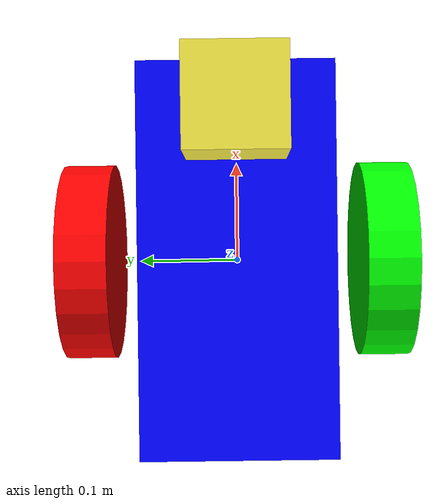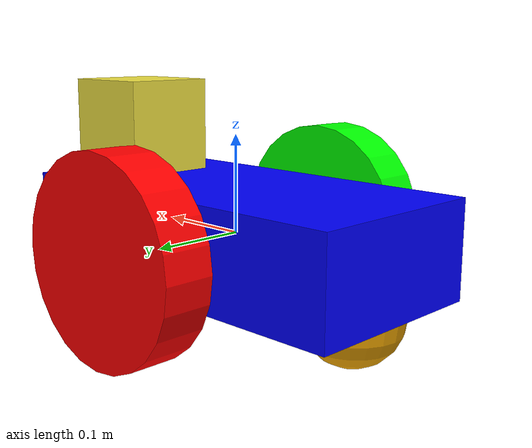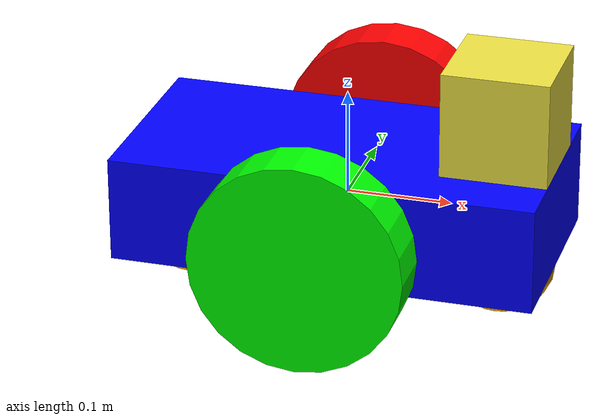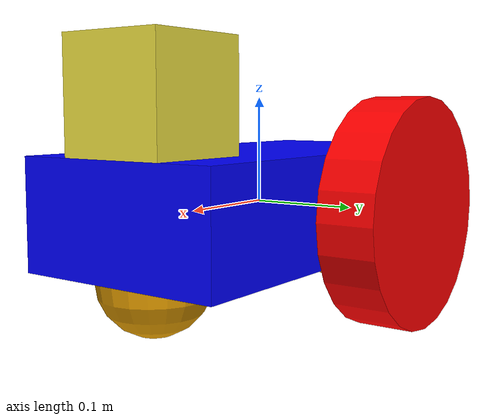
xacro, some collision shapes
<?xml version='1.0'?>

<robot name="myrobot" xmlns:xacro="http://www.ros.org/wiki/xacro">

<!--links -->
    <link name='chassis'>
        <pose>0 0 0.1 0 0 0</pose>
        <inertial>
            <mass value="5.0" />
            <origin xyz="0.0 0 0.1" rpy=" 0 0 0" />
            <inertia
            ixx="0.1" ixy="0" ixz="0"
            iyy="0.1" iyz="0"
            izz="0.1"
            />
        </inertial>
        <collision name='collision'>
            <geometry>
            <box size=".4 .2 .1" />
            </geometry>
        </collision>
        <visual name='chassis_visual'>
            <origin xyz="0 0 0" rpy=" 0 0 0" />
            <geometry>
            <box size=".4 .2 .1" />
            </geometry>
            <material name="blue">
                <color rgba="0.0 0.0 1 1.0" />
            </material>
        </visual>
        <collision name='caster_collision'>
            <origin xyz="-0.15 0 -0.05" rpy=" 0 0 0" />
            <geometry>
                <sphere radius="0.05" />
            </geometry>
        </collision>
        <visual name='caster_visual'>
            <origin xyz="-0.15 0 -0.05" rpy=" 0 0 0" />
            <geometry>
                <sphere radius="0.05" />
            </geometry>
        </visual>
        <collision name='caster_front_collision'>
            <origin xyz="0.15 0 -0.05" rpy=" 0 0 0" />
            <geometry>
                <sphere radius="0.05" />
            </geometry>
        </collision>
        <visual name='caster_front_visual'>
            <origin xyz="0.15 0 -0.05" rpy=" 0 0 0" />
            <geometry>
                <sphere radius="0.05" />
            </geometry>
        </visual>

    </link>

    <link name="left_wheel">
        <collision name="collision">
            <origin xyz="0 0 0" rpy="0 1.5707 1.5707" />
            <geometry>
                <cylinder radius="0.1" length="0.05" />
            </geometry>
        </collision>
        <visual name="left_wheel_visual">
            <origin xyz="0 0 0" rpy="0 1.5707 1.5707" />
            <geometry>
                <cylinder radius="0.1" length="0.05" />
            </geometry>
            <material name="red">
                <color rgba="1 0.0 0.0 1.0" />
            </material>
        </visual>
        <inertial>
            <origin xyz="0 0 0" rpy="0 1.5707 1.5707" />
            <mass value="5" />
            <inertia
            ixx=".1" ixy="0.0" ixz="0.0"
            iyy=".1" iyz="0.0"
            izz=".1" />
        </inertial>
    </link>

    <link name="right_wheel">
        <collision name="collision">
            <origin xyz="0 0 0" rpy="0 1.5707 1.5707" />
            <geometry>
                <cylinder radius="0.1" length="0.05" />
            </geometry>
        </collision>
        <visual name="right_wheel_visual">
            <origin xyz="0 0 0" rpy="0 1.5707 1.5707" />
            <geometry>
                <cylinder radius="0.1" length="0.05" />
            </geometry>
            <material name="green">
            <color rgba="0.0 1 0.0 1.0" />
            </material>
        </visual>
        <inertial>
            <origin xyz="0 0 0" rpy="0 1.5707 1.5707" />
            <mass value="5" />
            <inertia
            ixx=".1" ixy="0.0" ixz="0.0"
            iyy=".1" iyz="0.0"
            izz=".1" />
        </inertial>
    </link>

<!-- Hokuyo Laser link-->
    <link name="hokuyo_link">
        <collision>
            <origin xyz="0 0 0" rpy="0 0 0" />
            <geometry>
                <box size="0.1 0.1 0.1" />
            </geometry>
        </collision>
        <visual>
            <origin xyz="0 0 0" rpy="0 0 0" />
            <geometry>
                <mesh filename="package://lab_4/meshes/hokuyo.dae"/>
            </geometry>
        </visual>
        <inertial>
            <mass value="1e-5" />
            <origin xyz="0 0 0" rpy="0 0 0" />
            <inertia ixx="1e-6" ixy="0" ixz="0" iyy="1e-6" iyz="0" izz="1e-6" />
        </inertial>
    </link>

<!--joints -->
    <joint type="continuous" name="left_wheel_hinge">
        <origin xyz="0 0.15 0" rpy="0 0 0" />
        <child link="left_wheel" />
        <parent link="chassis" />
        <axis xyz="0 1 0" rpy="0 0 0" />
        <joint_properties damping="0.0" friction="0.0" />
    </joint>
        <joint type="continuous" name="right_wheel_hinge">
        <origin xyz="0 -0.15 0" rpy="0 0 0" />
        <child link="right_wheel" />
        <parent link="chassis" />
        <axis xyz="0 1 0" rpy="0 0 0" />
        <joint_properties damping="0.0" friction="0.0" />
    </joint>

<!-- Hokuyo Laser joint-->

    <joint name="hokuyo_joint" type="fixed">
        <axis xyz="0 1 0" />
        <origin xyz="0.15 0 0.1" rpy="0 0 0" />
        <parent link="chassis" />
        <child link="hokuyo_link" />
    </joint>

    <!-- hokuyo -->
        <gazebo reference="hokuyo_link">
        <sensor type="ray" name="head_hokuyo_sensor">
            <pose>0 0 0 0 0 0</pose>
            <visualize>true</visualize>
            <update_rate>40</update_rate>
            <ray>
                <scan>
                    <horizontal>
                    <samples>720</samples>
                    <resolution>1</resolution>
                    <min_angle>0</min_angle>
                    <max_angle>6.283</max_angle>
                    </horizontal>
                </scan>
                <range>
                    <min>0.10</min>
                    <max>30.0</max>
                    <resolution>0.01</resolution>
                </range>
                <noise>
                    <type>gaussian</type>
                    <mean>0.0</mean>
                    <stddev>0.01</stddev>
                </noise>
            </ray>
            <plugin name="gazebo_ros_head_hokuyo_controller" filename="libgazebo_ros_laser.so">
                <topicName>/scan</topicName>
                <frameName>hokuyo_link</frameName>
            </plugin>
        </sensor>
       </gazebo>

    <gazebo>
    <plugin name="differential_drive_controller" filename="libgazebo_ros_diff_drive.so">
        <!-- Plugin update rate in Hz -->
        <updateRate>10</updateRate>
        <!-- Name of left joint, defaults to `left_joint` -->
        <leftJoint>left_wheel_hinge</leftJoint>
        <!-- Name of right joint, defaults to `right_joint` -->
        <rightJoint>right_wheel_hinge</rightJoint>
        <!-- The distance from the center of one wheel to the other, in meters, defaults to 0.34 m -->
        <wheelSeparation>0.4</wheelSeparation>
        <!-- Diameter of the wheels, in meters, defaults to 0.15 m -->
        <wheelDiameter>0.2</wheelDiameter>
        <!-- Wheel acceleration, in rad/s^2, defaults to 0.0 rad/s^2 -->
        <wheelAcceleration>1.0</wheelAcceleration>
        <!-- Maximum torque which the wheels can produce, in Nm, defaults to 5 Nm -->
        <wheelTorque>20</wheelTorque>
        <!-- Topic to receive geometry_msgs/Twist message commands, defaults to `cmd_vel` -->
        <commandTopic>turtle1/cmd_vel</commandTopic>
        <!-- Topic to publish nav_msgs/Odometry messages, defaults to `odom` -->
        <odometryTopic>odom</odometryTopic>
        <!-- Odometry frame, defaults to `odom` -->
        <odometryFrame>odom</odometryFrame>
        <!-- Robot frame to calculate odometry from, defaults to `base_footprint` -->
        <robotBaseFrame>base_footprint</robotBaseFrame>
        <!-- Odometry source, 0 for ENCODER, 1 for WORLD, defaults to WORLD -->
        <odometrySource>1</odometrySource>
        <!-- Set to true to publish transforms for the wheel links, defaults to false -->
        <publishWheelTF>true</publishWheelTF>
        <!-- Set to true to publish transforms for the odometry, defaults to true -->
        <publishOdom>true</publishOdom>
        <!-- Set to true to publish sensor_msgs/JointState on /joint_states for the wheel
        joints, defaults to false -->
        <publishWheelJointState>true</publishWheelJointState>
        <!-- Set to true to swap right and left wheels, defaults to true -->
        <legacyMode>false</legacyMode>
    </plugin>
</gazebo>

</robot>
